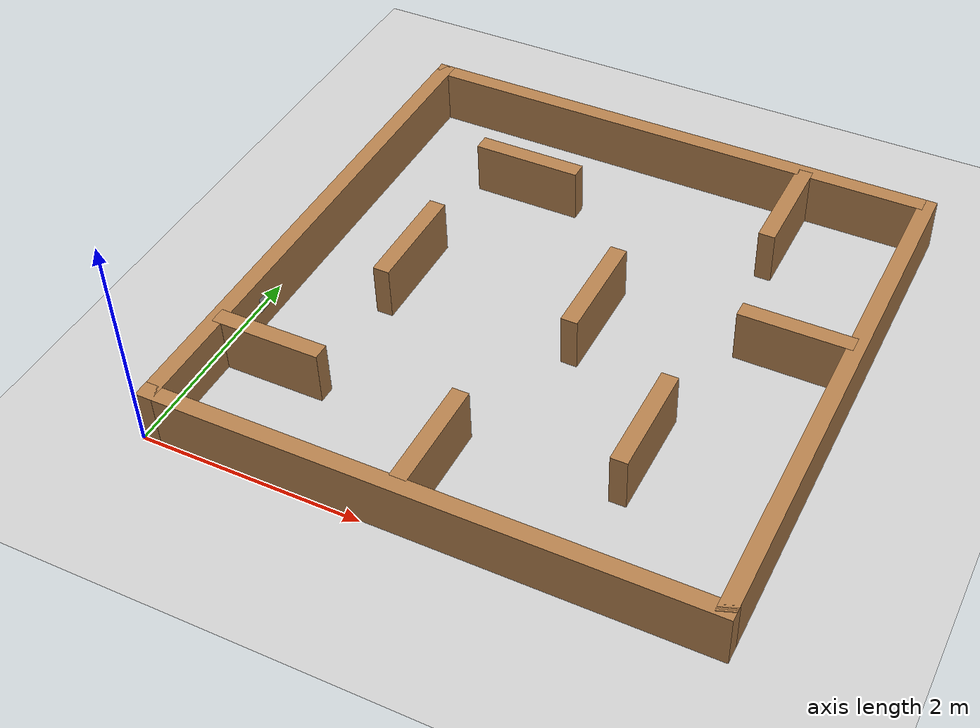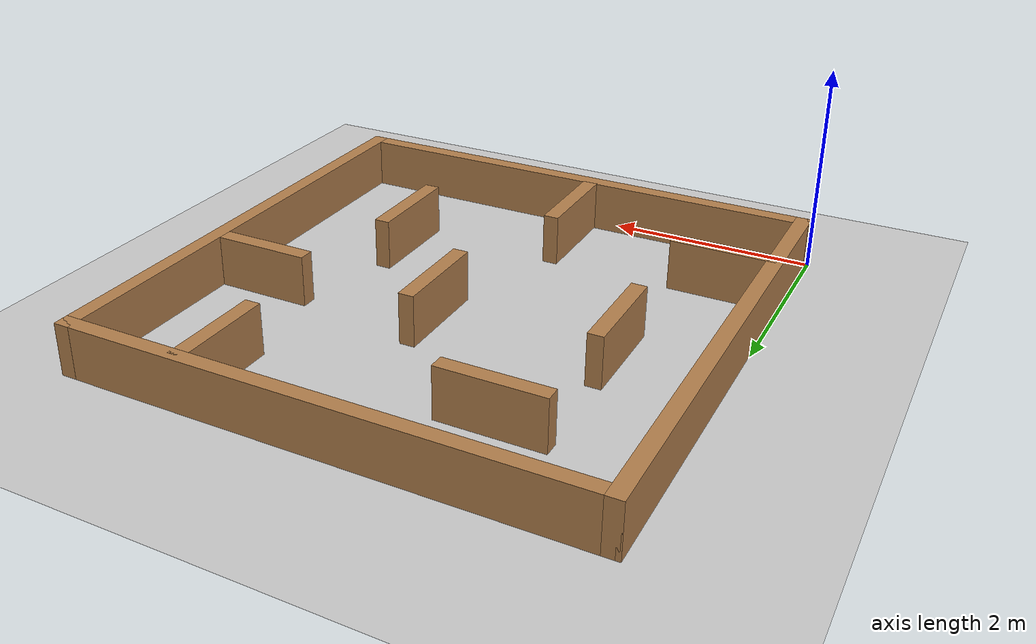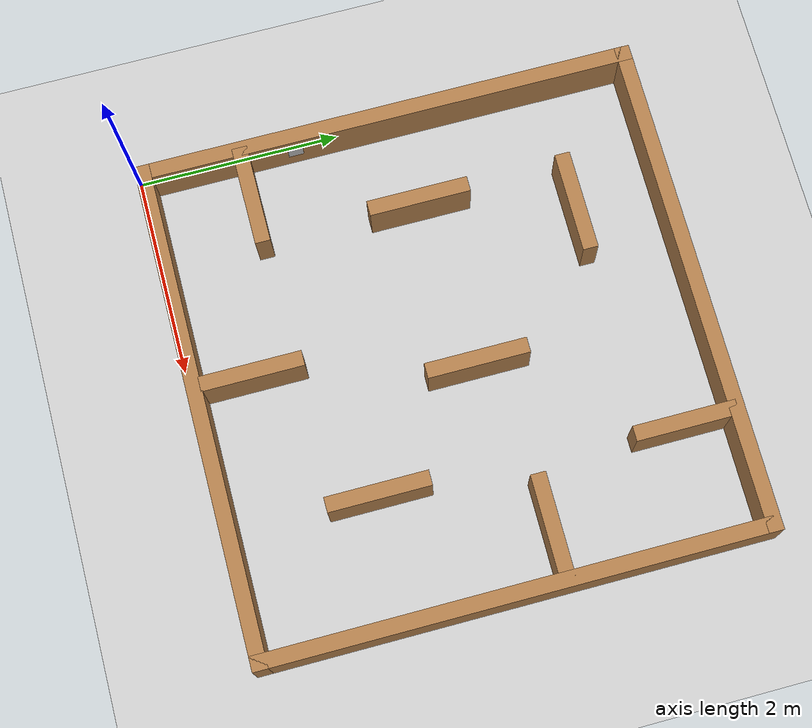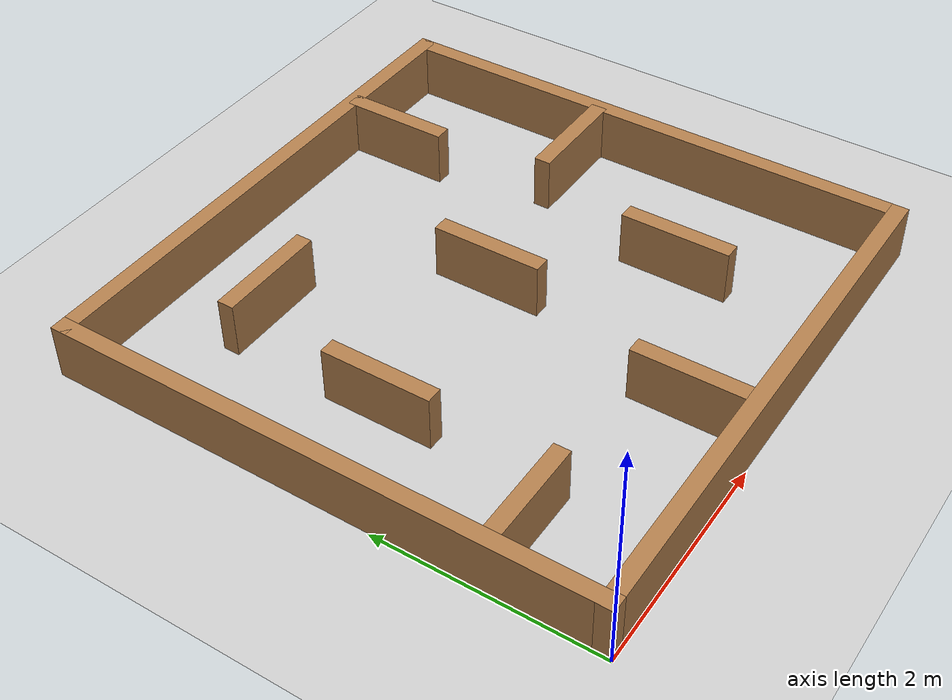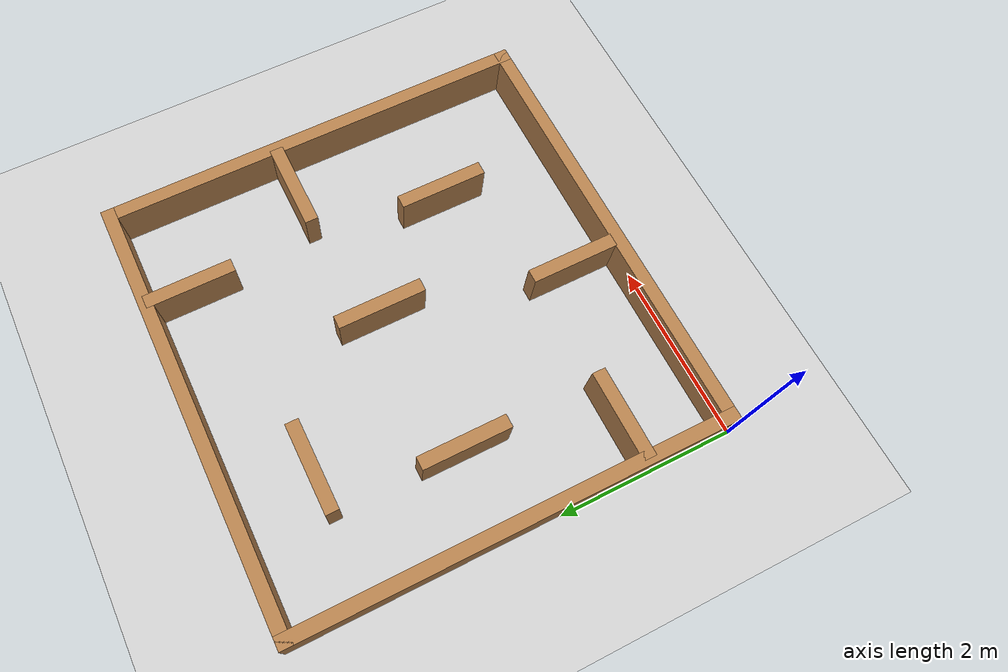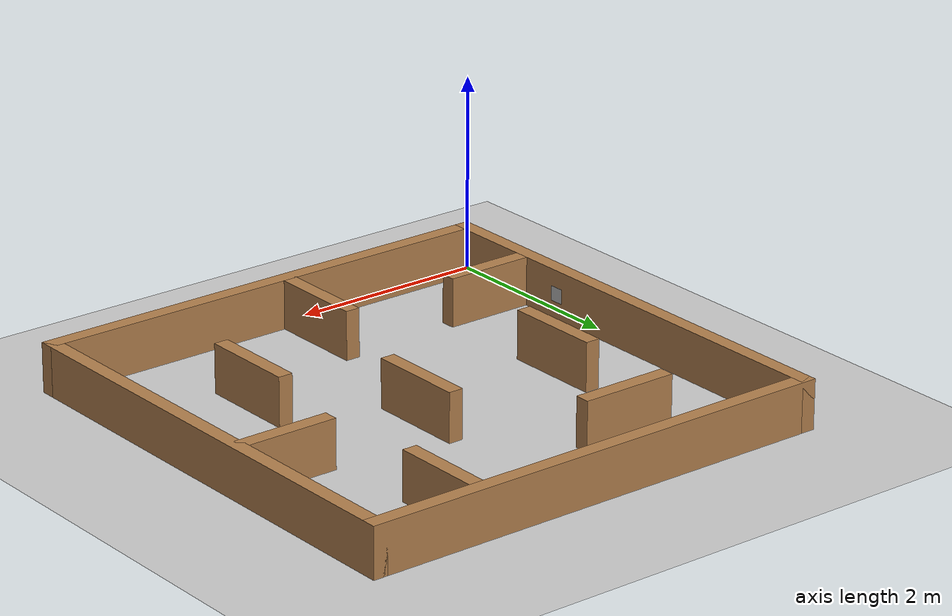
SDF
<sdf version="1.6">
 <world name="default">
  <light name="sun" type="directional">
   <pose>0 0 10 0 -0 0</pose>
   <diffuse>0.8 0.8 0.8 1</diffuse>
   <specular>0.2 0.2 0.2 1</specular>
   <attenuation>
    <range>1000</range>
    <constant>0.9</constant>
    <linear>0.01</linear>
    <quadratic>0.001</quadratic>
   </attenuation>
   <direction>-0.5 0.1 -0.9</direction>
  </light>
  <model name="ground_plane">
   <static>1</static>
   <link name="link">
    <collision name="collision">
     <geometry><plane><normal>0 0 1</normal><size>100 100</size></plane></geometry>
     <surface><friction><ode><mu>100</mu><mu2>50</mu2></ode></friction></surface>
    </collision>
    <visual name="visual">
     <cast_shadows>0</cast_shadows>
     <geometry><plane><normal>0 0 1</normal><size>100 100</size></plane></geometry>
     <material>
      <script><uri>file://media/materials/scripts/gazebo.material</uri><name>Gazebo/Grey</name></script>
     </material>
    </visual>
   </link>
  </model>
  <gravity>0 0 -9.8</gravity>
  <magnetic_field>6e-06 2.3e-05 -4.2e-05</magnetic_field>
  <atmosphere type="adiabatic"/>
  <physics name="default_physics" default="0" type="ode">
   <max_step_size>0.001</max_step_size>
   <real_time_factor>1</real_time_factor>
   <real_time_update_rate>1000</real_time_update_rate>
  </physics>
  <scene><ambient>0.4 0.4 0.4 1</ambient><background>0.7 0.7 0.7 1</background><shadows>1</shadows></scene>
  <audio><device>default</device></audio>
  <spherical_coordinates>
   <surface_model>EARTH_WGS84</surface_model>
   <latitude_deg>0</latitude_deg>
   <longitude_deg>0</longitude_deg>
   <elevation>0</elevation>
   <heading_deg>0</heading_deg>
  </spherical_coordinates>
  <model name="turtlebot3_plaza">
   <pose>2.50853 2.50872 0 0 -0 0</pose>
   <link name="Wall_0">
    <collision name="Wall_0_Collision">
     <geometry><box><size>5 0.15 0.5</size></box></geometry>
     <pose>0 0 0.25 0 -0 0</pose>
    </collision>
    <visual name="Wall_0_Visual">
     <pose>0 0 0.25 0 -0 0</pose>
     <geometry><box><size>5 0.15 0.5</size></box></geometry>
     <material>
      <script><uri>file://media/materials/scripts/gazebo.material</uri><name>Gazebo/Wood</name></script>
      <ambient>1 1 1 1</ambient>
     </material>
    </visual>
    <pose>-2.425 0 0 0 -0 1.5708</pose>
   </link>
   <link name="Wall_11">
    <collision name="Wall_11_Collision">
     <geometry><box><size>1 0.15 0.5</size></box></geometry>
     <pose>0 0 0.25 0 -0 0</pose>
    </collision>
    <visual name="Wall_11_Visual">
     <pose>0 0 0.25 0 -0 0</pose>
     <geometry><box><size>1 0.15 0.5</size></box></geometry>
     <material>
      <script><uri>file://media/materials/scripts/gazebo.material</uri><name>Gazebo/Wood</name></script>
      <ambient>1 1 1 1</ambient>
     </material>
    </visual>
    <pose>-1.937 -1.467 0 0 -0 0</pose>
   </link>
   <link name="Wall_13">
    <collision name="Wall_13_Collision">
     <geometry><box><size>1 0.15 0.5</size></box></geometry>
     <pose>0 0 0.25 0 -0 0</pose>
    </collision>
    <visual name="Wall_13_Visual">
     <pose>0 0 0.25 0 -0 0</pose>
     <geometry><box><size>1 0.15 0.5</size></box></geometry>
     <material>
      <script><uri>file://media/materials/scripts/gazebo.material</uri><name>Gazebo/Wood</name></script>
      <ambient>1 1 1 1</ambient>
     </material>
    </visual>
    <pose>-0.22 -1.866 0 0 0 -1.5708</pose>
   </link>
   <link name="Wall_15">
    <collision name="Wall_15_Collision">
     <geometry><box><size>1 0.15 0.5</size></box></geometry>
     <pose>0 0 0.25 0 -0 0</pose>
    </collision>
    <visual name="Wall_15_Visual">
     <pose>0 0 0.25 0 -0 0</pose>
     <geometry><box><size>1 0.15 0.5</size></box></geometry>
     <material>
      <script><uri>file://media/materials/scripts/gazebo.material</uri><name>Gazebo/Wood</name></script>
      <ambient>1 1 1 1</ambient>
     </material>
    </visual>
    <pose>1.195 -1.002 0 0 -0 1.5708</pose>
   </link>
   <link name="Wall_17">
    <collision name="Wall_17_Collision">
     <geometry><box><size>1 0.15 0.5</size></box></geometry>
     <pose>0 0 0.25 0 -0 0</pose>
    </collision>
    <visual name="Wall_17_Visual">
     <pose>0 0 0.25 0 -0 0</pose>
     <geometry><box><size>1 0.15 0.5</size></box></geometry>
     <material>
      <script><uri>file://media/materials/scripts/gazebo.material</uri><name>Gazebo/Wood</name></script>
      <ambient>1 1 1 1</ambient>
     </material>
    </visual>
    <pose>1.288 1.93 0 0 0 -1.5708</pose>
   </link>
   <link name="Wall_19">
    <collision name="Wall_19_Collision">
     <geometry><box><size>1 0.15 0.5</size></box></geometry>
     <pose>0 0 0.25 0 -0 0</pose>
    </collision>
    <visual name="Wall_19_Visual">
     <pose>0 0 0.25 0 -0 0</pose>
     <geometry><box><size>1 0.15 0.5</size></box></geometry>
     <material>
      <script><uri>file://media/materials/scripts/gazebo.material</uri><name>Gazebo/Wood</name></script>
      <ambient>1 1 1 1</ambient>
     </material>
    </visual>
    <pose>1.91128 0.4632 0 0 -0 0</pose>
   </link>
   <link name="Wall_2">
    <collision name="Wall_2_Collision">
     <geometry><box><size>5 0.15 0.5</size></box></geometry>
     <pose>0 0 0.25 0 -0 0</pose>
    </collision>
    <visual name="Wall_2_Visual">
     <pose>0 0 0.25 0 -0 0</pose>
     <geometry><box><size>5 0.15 0.5</size></box></geometry>
     <material>
      <script><uri>file://media/materials/scripts/gazebo.material</uri><name>Gazebo/Wood</name></script>
      <ambient>1 1 1 1</ambient>
     </material>
    </visual>
    <pose>0 2.425 0 0 -0 0</pose>
   </link>
   <link name="Wall_21">
    <collision name="Wall_21_Collision">
     <geometry><box><size>1 0.15 0.5</size></box></geometry>
     <pose>0 0 0.25 0 -0 0</pose>
    </collision>
    <visual name="Wall_21_Visual">
     <pose>0 0 0.25 0 -0 0</pose>
     <geometry><box><size>1 0.15 0.5</size></box></geometry>
     <material>
      <script><uri>file://media/materials/scripts/gazebo.material</uri><name>Gazebo/Wood</name></script>
      <ambient>1 1 1 1</ambient>
     </material>
    </visual>
    <pose>0.204 0.215 0 0 0 -1.5708</pose>
   </link>
   <link name="Wall_3">
    <collision name="Wall_3_Collision">
     <geometry><box><size>5 0.15 0.5</size></box></geometry>
     <pose>0 0 0.25 0 -0 0</pose>
    </collision>
    <visual name="Wall_3_Visual">
     <pose>0 0 0.25 0 -0 0</pose>
     <geometry><box><size>5 0.15 0.5</size></box></geometry>
     <material>
      <script><uri>file://media/materials/scripts/gazebo.material</uri><name>Gazebo/Wood</name></script>
      <ambient>1 1 1 1</ambient>
     </material>
    </visual>
    <pose>2.425 0 0 0 0 -1.5708</pose>
   </link>
   <link name="Wall_4">
    <collision name="Wall_4_Collision">
     <geometry><box><size>5 0.15 0.5</size></box></geometry>
     <pose>0 0 0.25 0 -0 0</pose>
    </collision>
    <visual name="Wall_4_Visual">
     <pose>0 0 0.25 0 -0 0</pose>
     <geometry><box><size>5 0.15 0.5</size></box></geometry>
     <material>
      <script><uri>file://media/materials/scripts/gazebo.material</uri><name>Gazebo/Wood</name></script>
      <ambient>1 1 1 1</ambient>
     </material>
    </visual>
    <pose>0 -2.425 0 0 -0 3.14159</pose>
   </link>
   <link name="Wall_7">
    <collision name="Wall_7_Collision">
     <geometry><box><size>1 0.15 0.5</size></box></geometry>
     <pose>0 0 0.25 0 -0 0</pose>
    </collision>
    <visual name="Wall_7_Visual">
     <pose>0 0 0.25 0 -0 0</pose>
     <geometry><box><size>1 0.15 0.5</size></box></geometry>
     <material>
      <script><uri>file://media/materials/scripts/gazebo.material</uri><name>Gazebo/Wood</name></script>
      <ambient>1 1 1 1</ambient>
     </material>
    </visual>
    <pose>-1.064 1.548 0 0 -0 0</pose>
   </link>
   <link name="Wall_9">
    <collision name="Wall_9_Collision">
     <geometry><box><size>1 0.15 0.5</size></box></geometry>
     <pose>0 0 0.25 0 -0 0</pose>
    </collision>
    <visual name="Wall_9_Visual">
     <pose>0 0 0.25 0 -0 0</pose>
     <geometry><box><size>1 0.15 0.5</size></box></geometry>
     <material>
      <script><uri>file://media/materials/scripts/gazebo.material</uri><name>Gazebo/Wood</name></script>
      <ambient>1 1 1 1</ambient>
     </material>
    </visual>
    <pose>-1.502 0.092 0 0 0 -1.5708</pose>
   </link>
   <static>1</static>
  </model>
  <model name="aruco_code_012">
   <static>1</static>
   <link name="link">
    <collision name="collision"><geometry><box><size>0.15 0.15 0.001</size></box></geometry></collision>
    <visual name="visual">
     <geometry><box><size>0.15 0.15 0.001</size></box></geometry>
     <material>
      <script>
       <uri>model://aruco_code_012/materials/scripts</uri>
       <uri>model://aruco_code_012/materials/textures</uri>
       <name>ac/aruco_code_012</name>
      </script>
     </material>
    </visual>
   </link>
   <pose>0.16 1.57 0.25 0.001125 1.57 -3.13206</pose>
  </model>
 </world>
</sdf>
